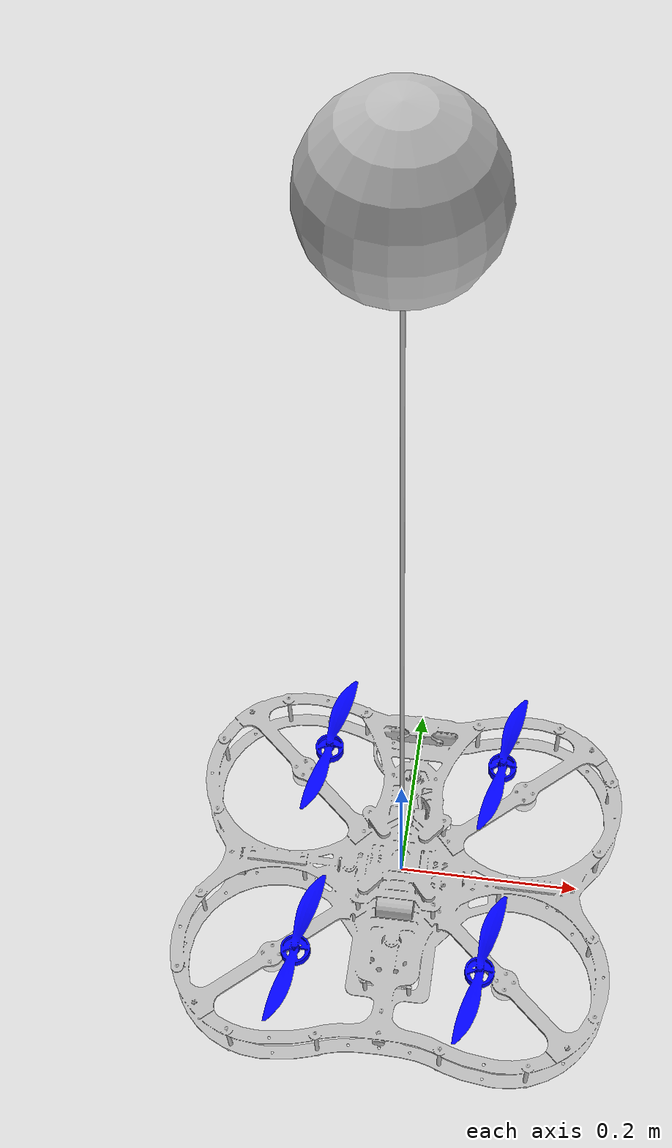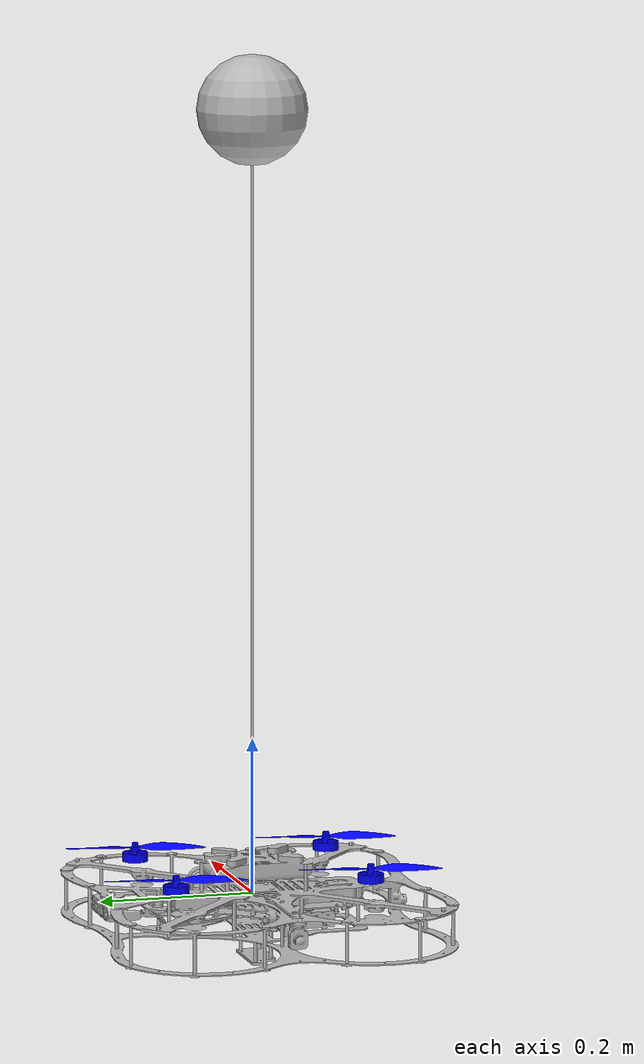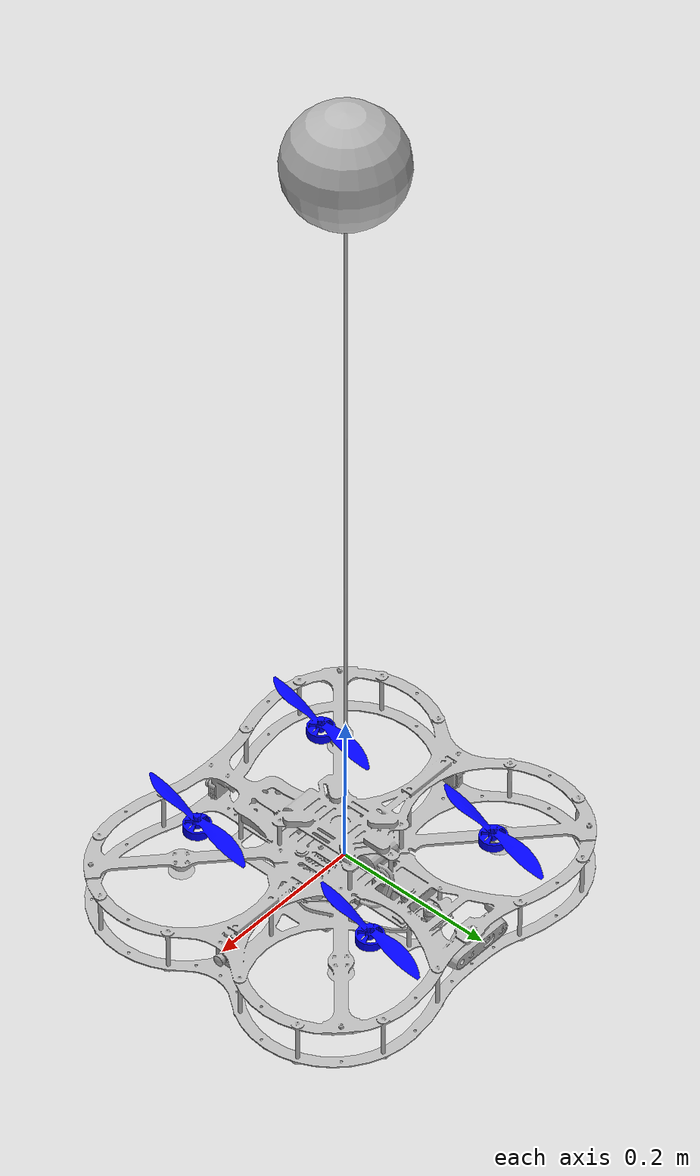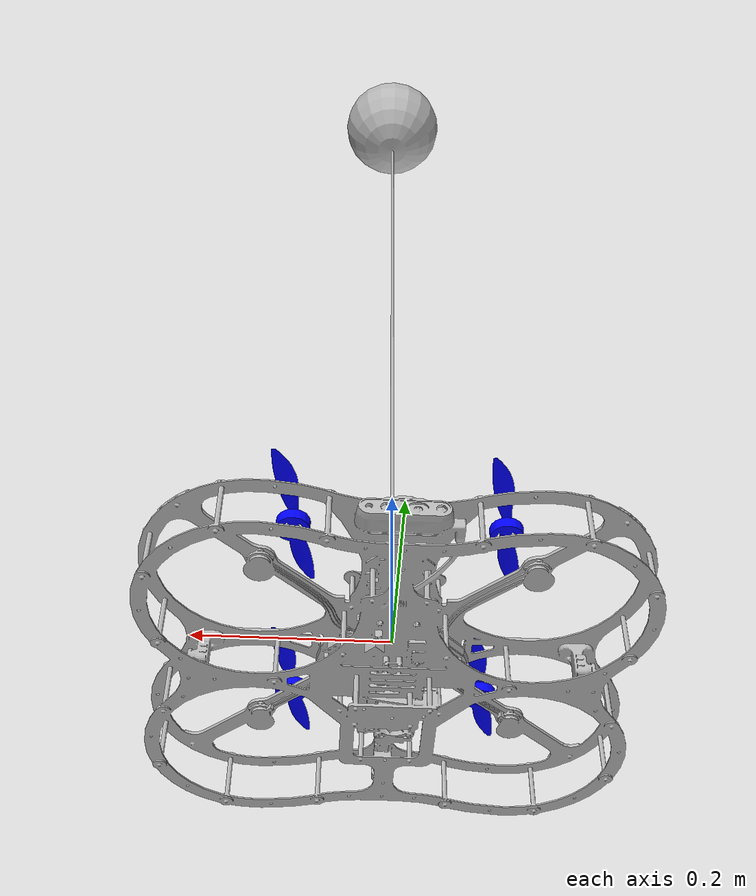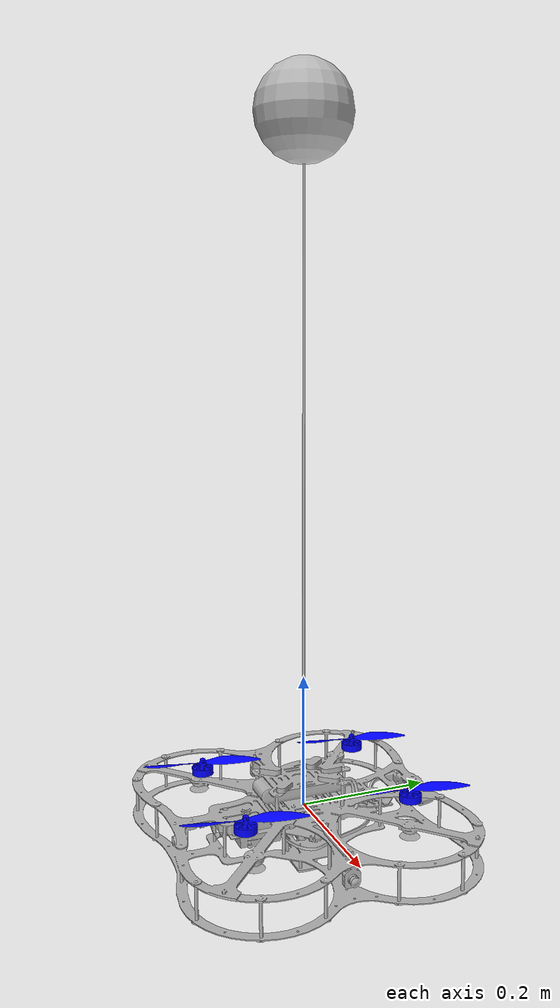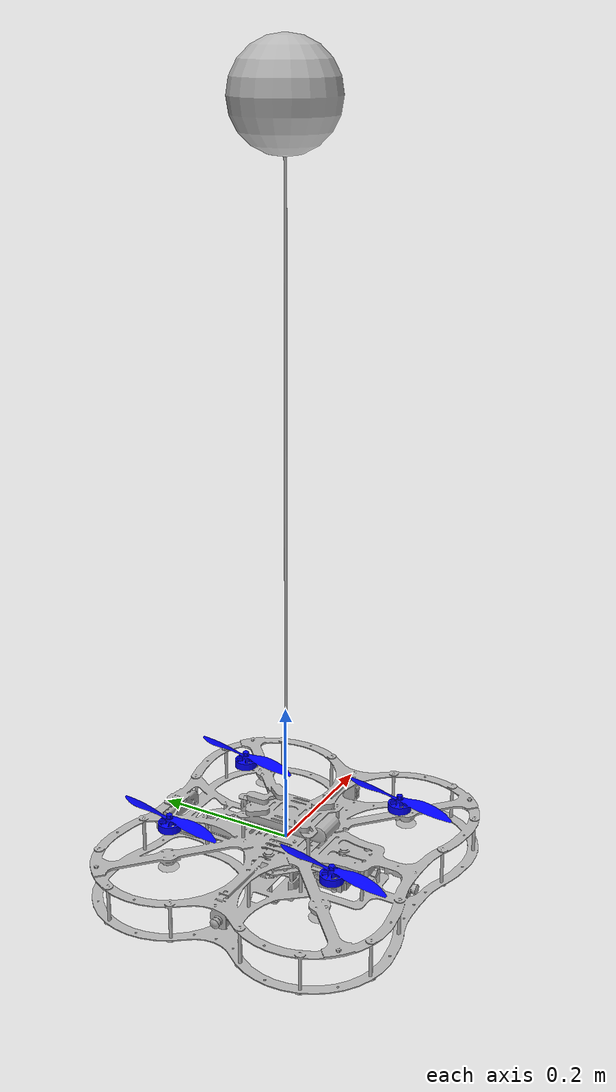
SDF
<sdf version='1.11'>
  <model name='quadrotor'>

    <enable_wind>1</enable_wind>
    <link name='quadrotor/base_link'>
      <inertial>
        <pose>0 0 0 0 0 0</pose>
        <mass>1.52</mass>
        <inertia>
          <ixx>14387108.65e-9</ixx>
          <iyy>16559882.52e-9</iyy>
          <izz>28784890.45e-9</izz>
        </inertia>
      </inertial>
      <collision name='quadrotor/base_link_inertia_collision_2'>
        <pose>0 0 0 0 0 0</pose>
        <geometry>
          <box>
            <size>0.2 0.2 0.05</size>
          </box>
        </geometry>
        <surface>
          <contact>
            <collide_without_contact>1</collide_without_contact>
          </contact>
        </surface>
      </collision>
      <visual name='quadrotor/base_link_inertia_visual_2'>
        <pose>0 0 0 3.1415920000000002 0 0</pose>
        <geometry>
          <mesh>
            <scale>1 1 1</scale>
            <uri>model://meshes/QDrone2_Combined.dae</uri>
          </mesh>
        </geometry>
      </visual>
      <!--rgbd-->
          <!-- distortion-->
          <!--lens-->

      <!--IMU1 , we will use different noise params-->
      <!-- range sensor using lidar-->
      <!-- we will only use a single vertical ray-->
    </link>

    <joint name='quadrotor/rotor_0_joint' type='revolute'>
      <pose relative_to='quadrotor/base_link'>-0.1016 -0.127 0.023 0 0 0</pose>
      <parent>quadrotor/base_link</parent>
      <child>quadrotor/rotor_0</child>
      <axis>
        <xyz>0 0 1</xyz>
        <limit>
          <lower>-inf</lower>
          <upper>inf</upper>
        </limit>
        <dynamics>
          <spring_reference>0</spring_reference>
          <spring_stiffness>0</spring_stiffness>
        </dynamics>
      </axis>
    </joint>
    <link name='quadrotor/rotor_0'>
      <pose relative_to='quadrotor/rotor_0_joint'>0 0 0 0 0 0</pose>
      <inertial>
        <pose>0 0 0 0 0 0</pose>
        <mass>0.0050000000000000001</mass>
        <inertia>
          <ixx>1.9500000000000001e-07</ixx>
          <ixy>0</ixy>
          <ixz>0</ixz>
          <iyy>3.3340833333333338e-05</iyy>
          <iyz>0</iyz>
          <izz>3.3520833333333339e-05</izz>
        </inertia>
      </inertial>
      <collision name='quadrotor/rotor_0_collision'>
        <pose>0 0 0 0 0 0</pose>
        <geometry>
          <cylinder>
            <length>0.0050000000000000001</length>
            <radius>0.10000000000000001</radius>
          </cylinder>
        </geometry>
        <surface>
          <contact>
            <ode/>
          </contact>
          <friction>
            <ode/>
          </friction>
        </surface>
      </collision>
      <visual name='quadrotor/rotor_0_visual'>
        <pose>0 0 0 0 0 0</pose>
        <geometry>
          <mesh>
            <scale>1 1 1</scale>
            <uri>model://meshes/motor_prop_assembly.dae</uri>
          </mesh>
        </geometry>
        <material>
          <ambient>0 0 1 1</ambient>
          <diffuse>0 0 1 1</diffuse>
          <specular>0.1 0.1 0.1 1</specular>
          <emissive>0 0 0 0</emissive>
      </material>
      </visual>
    </link>
    <joint name='quadrotor/rotor_1_joint' type='revolute'>
      <pose relative_to='quadrotor/base_link'>0.1016 -0.127 0.023 0 0 0</pose>
      <parent>quadrotor/base_link</parent>
      <child>quadrotor/rotor_1</child>
      <axis>
        <xyz>0 0 1</xyz>
        <limit>
          <lower>-inf</lower>
          <upper>inf</upper>
        </limit>
        <dynamics>
          <spring_reference>0</spring_reference>
          <spring_stiffness>0</spring_stiffness>
        </dynamics>
      </axis>
    </joint>
    <link name='quadrotor/rotor_1'>
      <pose relative_to='quadrotor/rotor_1_joint'>0 0 0 0 0 0</pose>
      <inertial>
        <pose>0 0 0 0 0 0</pose>
        <mass>0.0050000000000000001</mass>
        <inertia>
          <ixx>1.9500000000000001e-07</ixx>
          <ixy>0</ixy>
          <ixz>0</ixz>
          <iyy>3.3340833333333338e-05</iyy>
          <iyz>0</iyz>
          <izz>3.3520833333333339e-05</izz>
        </inertia>
      </inertial>
      <collision name='quadrotor/rotor_1_collision'>
        <pose>0 0 0 0 0 0</pose>
        <geometry>
          <cylinder>
            <length>0.0050000000000000001</length>
            <radius>0.10000000000000001</radius>
          </cylinder>
        </geometry>
        <surface>
          <contact>
            <ode/>
          </contact>
          <friction>
            <ode/>
          </friction>
        </surface>
      </collision>
      <visual name='quadrotor/rotor_1_visual'>
        <pose>0 0 0 0 0 0</pose>
        <geometry>
          <mesh>
            <scale>1 1 1</scale>
            <uri>model://meshes/motor_prop_assembly.dae</uri>
          </mesh>
        </geometry>
        <material>
          <ambient>0 0 1 1</ambient>
          <diffuse>0 0 1 1</diffuse>
          <specular>0.1 0.1 0.1 1</specular>
          <emissive>0 0 0 0</emissive>
      </material>
      </visual>
    </link>
    <joint name='quadrotor/rotor_2_joint' type='revolute'>
      <pose relative_to='quadrotor/base_link'>-0.1016 0.127 0.023 0 0 0</pose>
      <parent>quadrotor/base_link</parent>
      <child>quadrotor/rotor_2</child>
      <axis>
        <xyz>0 0 1</xyz>
        <limit>
          <lower>-inf</lower>
          <upper>inf</upper>
        </limit>
        <dynamics>
          <spring_reference>0</spring_reference>
          <spring_stiffness>0</spring_stiffness>
        </dynamics>
      </axis>
    </joint>
    <link name='quadrotor/rotor_2'>
      <pose relative_to='quadrotor/rotor_2_joint'>0 0 0 0 0 0</pose>
      <inertial>
        <pose>0 0 0 0 0 0</pose>
        <mass>0.0050000000000000001</mass>
        <inertia>
          <ixx>1.9500000000000001e-07</ixx>
          <ixy>0</ixy>
          <ixz>0</ixz>
          <iyy>3.3340833333333338e-05</iyy>
          <iyz>0</iyz>
          <izz>3.3520833333333339e-05</izz>
        </inertia>
      </inertial>
      <collision name='quadrotor/rotor_2_collision'>
        <pose>0 0 0 0 0 0</pose>
        <geometry>
          <cylinder>
            <length>0.0050000000000000001</length>
            <radius>0.10000000000000001</radius>
          </cylinder>
        </geometry>
        <surface>
          <contact>
            <ode/>
          </contact>
          <friction>
            <ode/>
          </friction>
        </surface>
      </collision>
      <visual name='quadrotor/rotor_2_visual'>
        <pose>0 0 0 0 0 0</pose>
        <geometry>
          <mesh>
            <scale>1 1 1</scale>
            <uri>model://meshes/motor_prop_assembly.dae</uri>
          </mesh>
        </geometry>
        <material>
          <ambient>0 0 1 1</ambient>
          <diffuse>0 0 1 1</diffuse>
          <specular>0.1 0.1 0.1 1</specular>
          <emissive>0 0 0 0</emissive>
      </material>
      </visual>
    </link>
    <joint name='quadrotor/rotor_3_joint' type='revolute'>
      <pose relative_to='quadrotor/base_link'>0.1016 0.127 0.023 0 0 0</pose>
      <parent>quadrotor/base_link</parent>
      <child>quadrotor/rotor_3</child>
      <axis>
        <xyz>0 0 1</xyz>
        <limit>
          <lower>-inf</lower>
          <upper>inf</upper>
        </limit>
        <dynamics>
          <spring_reference>0</spring_reference>
          <spring_stiffness>0</spring_stiffness>
        </dynamics>
      </axis>
    </joint>
    <link name='quadrotor/rotor_3'>
      <pose relative_to='quadrotor/rotor_3_joint'>0 0 0 0 0 0</pose>
      <inertial>
        <pose>0 0 0 0 0 0</pose>
        <mass>0.0050000000000000001</mass>
        <inertia>
          <ixx>1.9500000000000001e-07</ixx>
          <ixy>0</ixy>
          <ixz>0</ixz>
          <iyy>3.3340833333333338e-05</iyy>
          <iyz>0</iyz>
          <izz>3.3520833333333339e-05</izz>
        </inertia>
      </inertial>
      <collision name='quadrotor/rotor_3_collision'>
        <pose>0 0 0 0 0 0</pose>
        <geometry>
          <cylinder>
            <length>0.0050000000000000001</length>
            <radius>0.10000000000000001</radius>
          </cylinder>
        </geometry>
        <surface>
          <contact>
            <ode/>
          </contact>
          <friction>
            <ode/>
          </friction>
        </surface>
      </collision>
      <visual name='quadrotor/rotor_3_visual'>
        <pose>0 0 0 0 0 0</pose>
        <geometry>
          <mesh>
            <scale>1 1 1</scale>
            <uri>model://meshes/motor_prop_assembly.dae</uri>
          </mesh>
        </geometry>
        <material>
          <ambient>0 0 1 1</ambient>
          <diffuse>0 0 1 1</diffuse>
          <specular>0.1 0.1 0.1 1</specular>
          <emissive>0 0 0 0</emissive>
      </material>
      </visual>
    </link>

    <plugin name='gz::sim::systems::MultiRotorPlugin' filename='rotor_plugin'>
      <parentLink>quadrotor/base_link</parentLink>
      <linkNames>quadrotor/rotor_0 quadrotor/rotor_1 quadrotor/rotor_2 quadrotor/rotor_3</linkNames>
      <turningDirections>1 -1 -1 1</turningDirections>
      <timeConstantUp>0.0125</timeConstantUp>
      <timeConstantDown>0.025</timeConstantDown>
      <maxRotVelocity>2246.0</maxRotVelocity>
      <thrustConstantQuadraticParams>1.9533e-6 0 0</thrustConstantQuadraticParams>

      <groundEffectConstant>1.17198e-09</groundEffectConstant>
      <momentConstantQuadraticParams>2.8400982e-08  0 0</momentConstantQuadraticParams>
      <downWashCoefficients>0.0 0.0 0.0</downWashCoefficients>
      <otherUavNames></otherUavNames>
      <rotorInertia>4.92e-6</rotorInertia>
      <rotorDragCoefficient>0.000020673</rotorDragCoefficient>
      <rollingMomentCoefficient>1e-9</rollingMomentCoefficient>
      <rotorVelocitySlowdownSim>2</rotorVelocitySlowdownSim>
    </plugin>

    <frame name='cam_joint' attached_to='quadrotor/base_link'>
      <pose>0 0 0 0 0 0</pose>
    </frame>
    <frame name='cam_link' attached_to='cam_joint'>
      <pose>0 0 0 0 0 0</pose>
    </frame>
    <frame name='imu_joint' attached_to='quadrotor/base_link'>
      <pose>0 0 0 0 0 0</pose>
    </frame>
    <frame name='imu_link' attached_to='imu_joint'>
      <pose>0 0 0 0 0 0</pose>
    </frame>
    <frame name='quadrotor/base_joint' attached_to='quadrotor/base_link'>
      <pose>0 0 0 0 0 0</pose>
    </frame>
    <frame name='quadrotor/base_link_inertia' attached_to='quadrotor/base_joint'>
      <pose>0 0 0 0 0 0</pose>
    </frame>

  <link name='payload_link'>
  <!-- center of a 1.0 m rod is at z = 0.5 -->
  <pose>0 0 0.5 0 0 0</pose>
  <inertial>
    <!-- mass doubled with length: 0.006 -> 0.012 kg -->
    <mass>1.2e-2</mass>
    <inertia>
      <!-- solid cylinder about COM, L=1.0, r=0.002, m=0.012 -->
      <ixx>1.000012e-3</ixx>
      <iyy>1.000012e-3</iyy>
      <izz>2.4e-8</izz>
    </inertia>
  </inertial>
  <collision name='payload_link_collision'>
    <geometry>
      <cylinder>
        <radius>2e-3</radius>
        <length>1.000</length>
      </cylinder>
    </geometry>
    <surface>
      <contact>
        <collide_without_contact>1</collide_without_contact>
        <collide_bitmask>0x00</collide_bitmask>
      </contact>
    </surface>
  </collision>
  <visual name='payload_link_visual'>
    <geometry>
      <cylinder>
        <radius>2e-3</radius>
        <length>1.000</length>
      </cylinder>
    </geometry>
  </visual>
</link>

<joint name="joint0" type="ball">
  <parent>quadrotor/base_link</parent>
  <child>payload_link</child>
  <!-- bottom end of 1.0 m rod -->
  <pose relative_to="payload_link">0 0 -0.5 0 0 0</pose>
</joint>

<joint name="joint1" type="ball">
  <parent>payload_link</parent>
  <child>payload</child>
  <!-- top end of 1.0 m rod -->
  <pose relative_to="payload_link">0 0 0.5 0 0 0</pose>
</joint>

<link name='payload'>
  <!-- keep payload properties, just move it to z = 1.0 to sit at the tip -->
  <pose>0 0 1.0 0 0 0</pose>
  <inertial>
    <mass>0.205</mass>
    <inertia>
      <ixx>9.8e-4</ixx>
      <iyy>9.8e-4</iyy>
      <izz>9.8e-4</izz>
    </inertia>
  </inertial>
  <collision name='payload_collision'>
    <geometry>
      <sphere>
        <radius>7e-2</radius>
      </sphere>
    </geometry>
    <surface>
      <contact>
        <collide_without_contact>1</collide_without_contact>
      </contact>
    </surface>
  </collision>
  <visual name='payload_visual'>
    <geometry>
      <sphere>
        <radius>7e-2</radius>
      </sphere>
    </geometry>
  </visual>
</link>

  </model>
</sdf>
